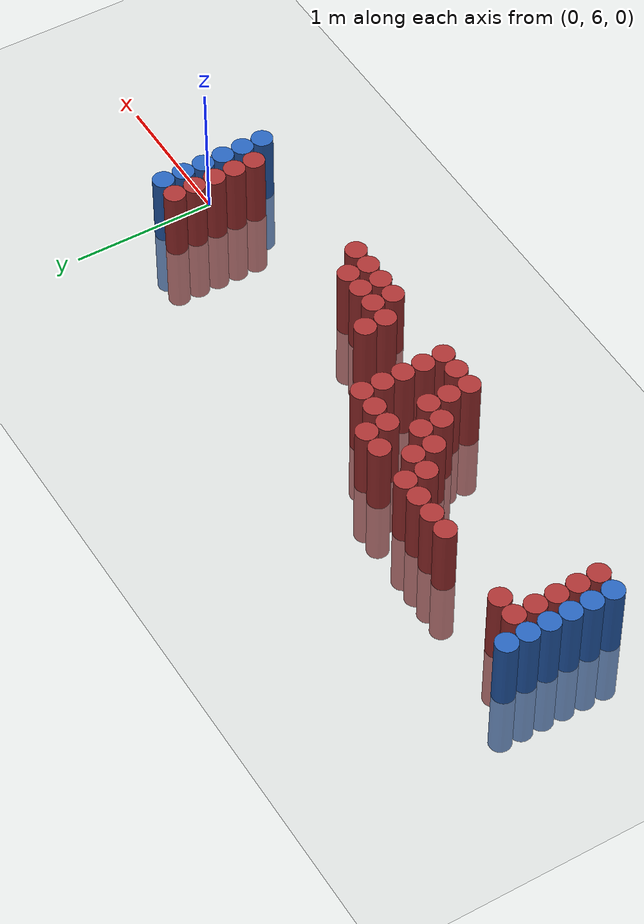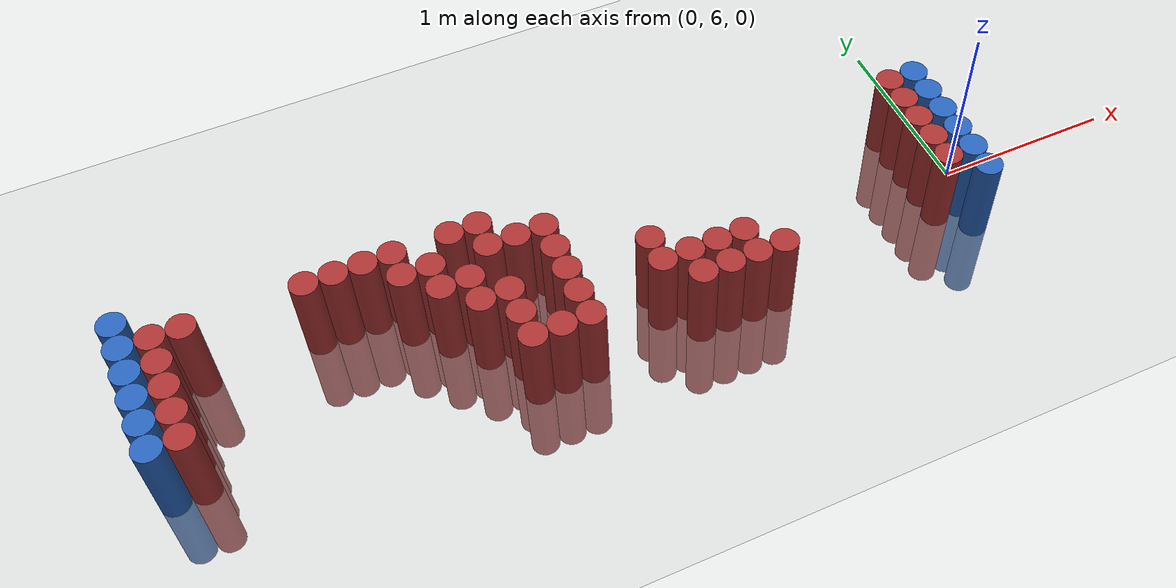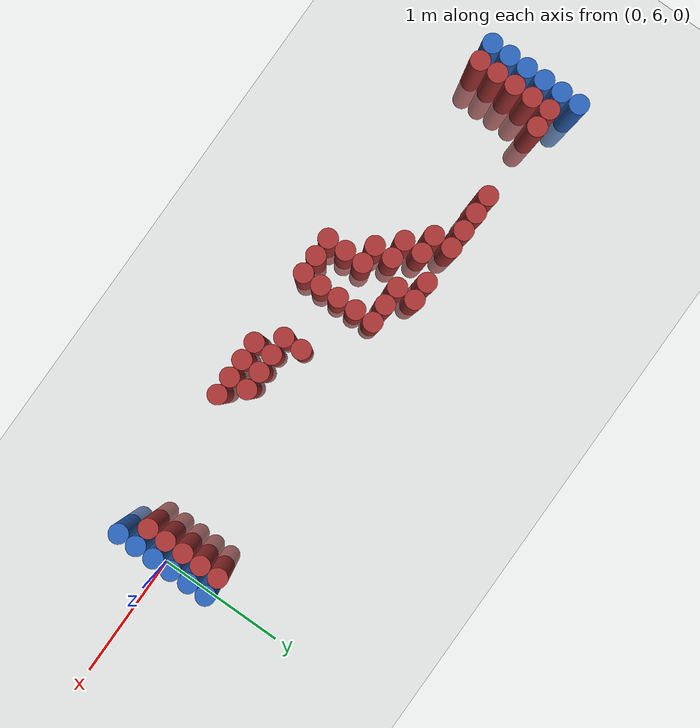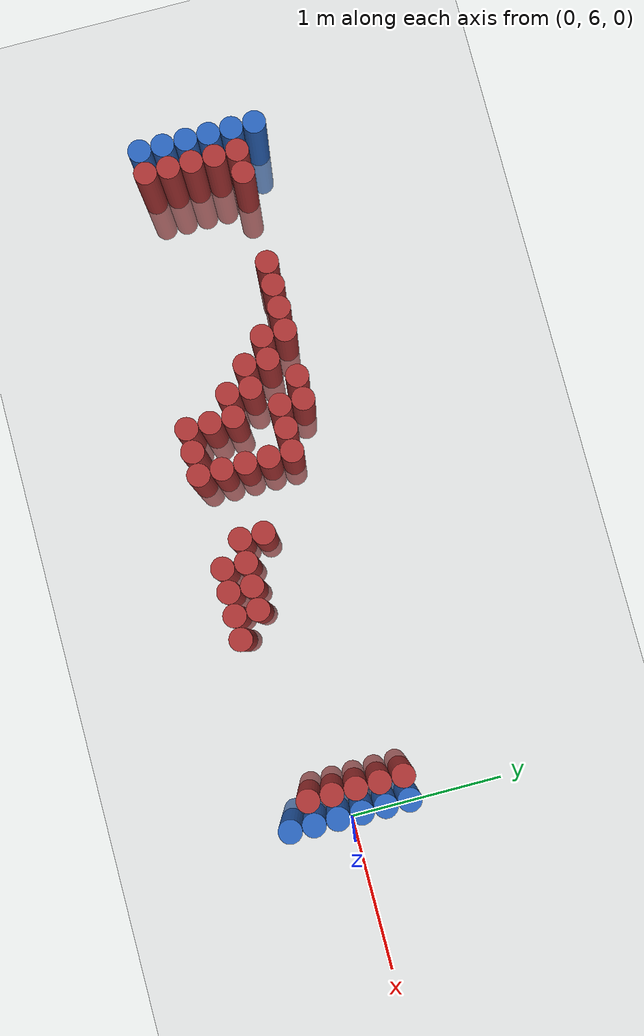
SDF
<sdf version="1.6">
 <world name="default">
  <model name="ground_plane">
   <static>1</static>
   <link name="link">
    <collision name="collision">
     <geometry><plane><normal>0 0 1</normal><size>100 100</size></plane></geometry>
     <surface><friction><ode><mu>100</mu><mu2>50</mu2></ode></friction></surface>
    </collision>
    <visual name="visual">
     <cast_shadows>0</cast_shadows>
     <geometry><plane><normal>0 0 1</normal><size>100 100</size></plane></geometry>
     <material>
      <script><uri>file://media/materials/scripts/gazebo.material</uri><name>Gazebo/Grey</name></script>
     </material>
    </visual>
   </link>
  </model>
  <model name="unit_cylinder_100">
   <static>1</static>
   <pose>-4.425000 5.775000 0.000000 0.000000 0.000000 0.000000</pose>
   <link name="link">
    <inertial>
     <mass>1</mass>
     <inertia><ixx>0.145833</ixx><ixy>0</ixy><ixz>0</ixz><iyy>0.145833</iyy><iyz>0</iyz><izz>0.125</izz></inertia>
    </inertial>
    <collision name="collision">
     <geometry><cylinder><radius>0.075000</radius><length>1</length></cylinder></geometry>
    </collision>
    <visual name="visual">
     <geometry><cylinder><radius>0.075000</radius><length>1</length></cylinder></geometry>
     <material>
      <ambient>0.152000 0.379000 0.720000 1</ambient>
      <diffuse>0.152000 0.379000 0.720000 1</diffuse>
     </material>
     <material>
      <script><name>Gazebo/Grey</name><uri>file://media/materials/scripts/gazebo.material</uri></script>
     </material>
    </visual>
   </link>
  </model>
  <model name="unit_cylinder_101">
   <static>1</static>
   <pose>-4.425000 5.925000 0.000000 0.000000 0.000000 0.000000</pose>
   <link name="link">
    <inertial>
     <mass>1</mass>
     <inertia><ixx>0.145833</ixx><ixy>0</ixy><ixz>0</ixz><iyy>0.145833</iyy><iyz>0</iyz><izz>0.125</izz></inertia>
    </inertial>
    <collision name="collision">
     <geometry><cylinder><radius>0.075000</radius><length>1</length></cylinder></geometry>
    </collision>
    <visual name="visual">
     <geometry><cylinder><radius>0.075000</radius><length>1</length></cylinder></geometry>
     <material>
      <ambient>0.152000 0.379000 0.720000 1</ambient>
      <diffuse>0.152000 0.379000 0.720000 1</diffuse>
     </material>
     <material>
      <script><name>Gazebo/Grey</name><uri>file://media/materials/scripts/gazebo.material</uri></script>
     </material>
    </visual>
   </link>
  </model>
  <model name="unit_cylinder_102">
   <static>1</static>
   <pose>-4.425000 6.075000 0.000000 0.000000 0.000000 0.000000</pose>
   <link name="link">
    <inertial>
     <mass>1</mass>
     <inertia><ixx>0.145833</ixx><ixy>0</ixy><ixz>0</ixz><iyy>0.145833</iyy><iyz>0</iyz><izz>0.125</izz></inertia>
    </inertial>
    <collision name="collision">
     <geometry><cylinder><radius>0.075000</radius><length>1</length></cylinder></geometry>
    </collision>
    <visual name="visual">
     <geometry><cylinder><radius>0.075000</radius><length>1</length></cylinder></geometry>
     <material>
      <ambient>0.152000 0.379000 0.720000 1</ambient>
      <diffuse>0.152000 0.379000 0.720000 1</diffuse>
     </material>
     <material>
      <script><name>Gazebo/Grey</name><uri>file://media/materials/scripts/gazebo.material</uri></script>
     </material>
    </visual>
   </link>
  </model>
  <model name="unit_cylinder_103">
   <static>1</static>
   <pose>-4.425000 6.225000 0.000000 0.000000 0.000000 0.000000</pose>
   <link name="link">
    <inertial>
     <mass>1</mass>
     <inertia><ixx>0.145833</ixx><ixy>0</ixy><ixz>0</ixz><iyy>0.145833</iyy><iyz>0</iyz><izz>0.125</izz></inertia>
    </inertial>
    <collision name="collision">
     <geometry><cylinder><radius>0.075000</radius><length>1</length></cylinder></geometry>
    </collision>
    <visual name="visual">
     <geometry><cylinder><radius>0.075000</radius><length>1</length></cylinder></geometry>
     <material>
      <ambient>0.152000 0.379000 0.720000 1</ambient>
      <diffuse>0.152000 0.379000 0.720000 1</diffuse>
     </material>
     <material>
      <script><name>Gazebo/Grey</name><uri>file://media/materials/scripts/gazebo.material</uri></script>
     </material>
    </visual>
   </link>
  </model>
  <model name="unit_cylinder_104">
   <static>1</static>
   <pose>-4.425000 6.375000 0.000000 0.000000 0.000000 0.000000</pose>
   <link name="link">
    <inertial>
     <mass>1</mass>
     <inertia><ixx>0.145833</ixx><ixy>0</ixy><ixz>0</ixz><iyy>0.145833</iyy><iyz>0</iyz><izz>0.125</izz></inertia>
    </inertial>
    <collision name="collision">
     <geometry><cylinder><radius>0.075000</radius><length>1</length></cylinder></geometry>
    </collision>
    <visual name="visual">
     <geometry><cylinder><radius>0.075000</radius><length>1</length></cylinder></geometry>
     <material>
      <ambient>0.152000 0.379000 0.720000 1</ambient>
      <diffuse>0.152000 0.379000 0.720000 1</diffuse>
     </material>
     <material>
      <script><name>Gazebo/Grey</name><uri>file://media/materials/scripts/gazebo.material</uri></script>
     </material>
    </visual>
   </link>
  </model>
  <model name="unit_cylinder_105">
   <static>1</static>
   <pose>-4.425000 6.525000 0.000000 0.000000 0.000000 0.000000</pose>
   <link name="link">
    <inertial>
     <mass>1</mass>
     <inertia><ixx>0.145833</ixx><ixy>0</ixy><ixz>0</ixz><iyy>0.145833</iyy><iyz>0</iyz><izz>0.125</izz></inertia>
    </inertial>
    <collision name="collision">
     <geometry><cylinder><radius>0.075000</radius><length>1</length></cylinder></geometry>
    </collision>
    <visual name="visual">
     <geometry><cylinder><radius>0.075000</radius><length>1</length></cylinder></geometry>
     <material>
      <ambient>0.152000 0.379000 0.720000 1</ambient>
      <diffuse>0.152000 0.379000 0.720000 1</diffuse>
     </material>
     <material>
      <script><name>Gazebo/Grey</name><uri>file://media/materials/scripts/gazebo.material</uri></script>
     </material>
    </visual>
   </link>
  </model>
  <model name="unit_cylinder_129">
   <static>1</static>
   <pose>-4.275000 5.775000 0.000000 0.000000 0.000000 0.000000</pose>
   <link name="link">
    <inertial>
     <mass>1</mass>
     <inertia><ixx>0.145833</ixx><ixy>0</ixy><ixz>0</ixz><iyy>0.145833</iyy><iyz>0</iyz><izz>0.125</izz></inertia>
    </inertial>
    <collision name="collision">
     <geometry><cylinder><radius>0.075000</radius><length>1</length></cylinder></geometry>
    </collision>
    <visual name="visual">
     <geometry><cylinder><radius>0.075000</radius><length>1</length></cylinder></geometry>
     <material>
      <ambient>0.648000 0.192000 0.192000 1</ambient>
      <diffuse>0.648000 0.192000 0.192000 1</diffuse>
     </material>
     <material>
      <script><name>Gazebo/Grey</name><uri>file://media/materials/scripts/gazebo.material</uri></script>
     </material>
    </visual>
   </link>
  </model>
  <model name="unit_cylinder_130">
   <static>1</static>
   <pose>-4.275000 5.925000 0.000000 0.000000 0.000000 0.000000</pose>
   <link name="link">
    <inertial>
     <mass>1</mass>
     <inertia><ixx>0.145833</ixx><ixy>0</ixy><ixz>0</ixz><iyy>0.145833</iyy><iyz>0</iyz><izz>0.125</izz></inertia>
    </inertial>
    <collision name="collision">
     <geometry><cylinder><radius>0.075000</radius><length>1</length></cylinder></geometry>
    </collision>
    <visual name="visual">
     <geometry><cylinder><radius>0.075000</radius><length>1</length></cylinder></geometry>
     <material>
      <ambient>0.648000 0.192000 0.192000 1</ambient>
      <diffuse>0.648000 0.192000 0.192000 1</diffuse>
     </material>
     <material>
      <script><name>Gazebo/Grey</name><uri>file://media/materials/scripts/gazebo.material</uri></script>
     </material>
    </visual>
   </link>
  </model>
  <model name="unit_cylinder_131">
   <static>1</static>
   <pose>-4.275000 6.075000 0.000000 0.000000 0.000000 0.000000</pose>
   <link name="link">
    <inertial>
     <mass>1</mass>
     <inertia><ixx>0.145833</ixx><ixy>0</ixy><ixz>0</ixz><iyy>0.145833</iyy><iyz>0</iyz><izz>0.125</izz></inertia>
    </inertial>
    <collision name="collision">
     <geometry><cylinder><radius>0.075000</radius><length>1</length></cylinder></geometry>
    </collision>
    <visual name="visual">
     <geometry><cylinder><radius>0.075000</radius><length>1</length></cylinder></geometry>
     <material>
      <ambient>0.648000 0.192000 0.192000 1</ambient>
      <diffuse>0.648000 0.192000 0.192000 1</diffuse>
     </material>
     <material>
      <script><name>Gazebo/Grey</name><uri>file://media/materials/scripts/gazebo.material</uri></script>
     </material>
    </visual>
   </link>
  </model>
  <model name="unit_cylinder_132">
   <static>1</static>
   <pose>-4.275000 6.225000 0.000000 0.000000 0.000000 0.000000</pose>
   <link name="link">
    <inertial>
     <mass>1</mass>
     <inertia><ixx>0.145833</ixx><ixy>0</ixy><ixz>0</ixz><iyy>0.145833</iyy><iyz>0</iyz><izz>0.125</izz></inertia>
    </inertial>
    <collision name="collision">
     <geometry><cylinder><radius>0.075000</radius><length>1</length></cylinder></geometry>
    </collision>
    <visual name="visual">
     <geometry><cylinder><radius>0.075000</radius><length>1</length></cylinder></geometry>
     <material>
      <ambient>0.648000 0.192000 0.192000 1</ambient>
      <diffuse>0.648000 0.192000 0.192000 1</diffuse>
     </material>
     <material>
      <script><name>Gazebo/Grey</name><uri>file://media/materials/scripts/gazebo.material</uri></script>
     </material>
    </visual>
   </link>
  </model>
  <model name="unit_cylinder_133">
   <static>1</static>
   <pose>-4.275000 6.375000 0.000000 0.000000 0.000000 0.000000</pose>
   <link name="link">
    <inertial>
     <mass>1</mass>
     <inertia><ixx>0.145833</ixx><ixy>0</ixy><ixz>0</ixz><iyy>0.145833</iyy><iyz>0</iyz><izz>0.125</izz></inertia>
    </inertial>
    <collision name="collision">
     <geometry><cylinder><radius>0.075000</radius><length>1</length></cylinder></geometry>
    </collision>
    <visual name="visual">
     <geometry><cylinder><radius>0.075000</radius><length>1</length></cylinder></geometry>
     <material>
      <ambient>0.648000 0.192000 0.192000 1</ambient>
      <diffuse>0.648000 0.192000 0.192000 1</diffuse>
     </material>
     <material>
      <script><name>Gazebo/Grey</name><uri>file://media/materials/scripts/gazebo.material</uri></script>
     </material>
    </visual>
   </link>
  </model>
  <model name="unit_cylinder_137">
   <static>1</static>
   <pose>-4.125000 6.375000 0.000000 0.000000 0.000000 0.000000</pose>
   <link name="link">
    <inertial>
     <mass>1</mass>
     <inertia><ixx>0.145833</ixx><ixy>0</ixy><ixz>0</ixz><iyy>0.145833</iyy><iyz>0</iyz><izz>0.125</izz></inertia>
    </inertial>
    <collision name="collision">
     <geometry><cylinder><radius>0.075000</radius><length>1</length></cylinder></geometry>
    </collision>
    <visual name="visual">
     <geometry><cylinder><radius>0.075000</radius><length>1</length></cylinder></geometry>
     <material>
      <ambient>0.648000 0.192000 0.192000 1</ambient>
      <diffuse>0.648000 0.192000 0.192000 1</diffuse>
     </material>
     <material>
      <script><name>Gazebo/Grey</name><uri>file://media/materials/scripts/gazebo.material</uri></script>
     </material>
    </visual>
   </link>
  </model>
  <model name="unit_cylinder_164">
   <static>1</static>
   <pose>-3.525000 6.375000 0.000000 0.000000 0.000000 0.000000</pose>
   <link name="link">
    <inertial>
     <mass>1</mass>
     <inertia><ixx>0.145833</ixx><ixy>0</ixy><ixz>0</ixz><iyy>0.145833</iyy><iyz>0</iyz><izz>0.125</izz></inertia>
    </inertial>
    <collision name="collision">
     <geometry><cylinder><radius>0.075000</radius><length>1</length></cylinder></geometry>
    </collision>
    <visual name="visual">
     <geometry><cylinder><radius>0.075000</radius><length>1</length></cylinder></geometry>
     <material>
      <ambient>0.648000 0.192000 0.192000 1</ambient>
      <diffuse>0.648000 0.192000 0.192000 1</diffuse>
     </material>
     <material>
      <script><name>Gazebo/Grey</name><uri>file://media/materials/scripts/gazebo.material</uri></script>
     </material>
    </visual>
   </link>
  </model>
  <model name="unit_cylinder_169">
   <static>1</static>
   <pose>-3.375000 6.375000 0.000000 0.000000 0.000000 0.000000</pose>
   <link name="link">
    <inertial>
     <mass>1</mass>
     <inertia><ixx>0.145833</ixx><ixy>0</ixy><ixz>0</ixz><iyy>0.145833</iyy><iyz>0</iyz><izz>0.125</izz></inertia>
    </inertial>
    <collision name="collision">
     <geometry><cylinder><radius>0.075000</radius><length>1</length></cylinder></geometry>
    </collision>
    <visual name="visual">
     <geometry><cylinder><radius>0.075000</radius><length>1</length></cylinder></geometry>
     <material>
      <ambient>0.648000 0.192000 0.192000 1</ambient>
      <diffuse>0.648000 0.192000 0.192000 1</diffuse>
     </material>
     <material>
      <script><name>Gazebo/Grey</name><uri>file://media/materials/scripts/gazebo.material</uri></script>
     </material>
    </visual>
   </link>
  </model>
  <model name="unit_cylinder_180">
   <static>1</static>
   <pose>-3.225000 6.375000 0.000000 0.000000 0.000000 0.000000</pose>
   <link name="link">
    <inertial>
     <mass>1</mass>
     <inertia><ixx>0.145833</ixx><ixy>0</ixy><ixz>0</ixz><iyy>0.145833</iyy><iyz>0</iyz><izz>0.125</izz></inertia>
    </inertial>
    <collision name="collision">
     <geometry><cylinder><radius>0.075000</radius><length>1</length></cylinder></geometry>
    </collision>
    <visual name="visual">
     <geometry><cylinder><radius>0.075000</radius><length>1</length></cylinder></geometry>
     <material>
      <ambient>0.648000 0.192000 0.192000 1</ambient>
      <diffuse>0.648000 0.192000 0.192000 1</diffuse>
     </material>
     <material>
      <script><name>Gazebo/Grey</name><uri>file://media/materials/scripts/gazebo.material</uri></script>
     </material>
    </visual>
   </link>
  </model>
  <model name="unit_cylinder_188">
   <static>1</static>
   <pose>-3.075000 6.225000 0.000000 0.000000 0.000000 0.000000</pose>
   <link name="link">
    <inertial>
     <mass>1</mass>
     <inertia><ixx>0.145833</ixx><ixy>0</ixy><ixz>0</ixz><iyy>0.145833</iyy><iyz>0</iyz><izz>0.125</izz></inertia>
    </inertial>
    <collision name="collision">
     <geometry><cylinder><radius>0.075000</radius><length>1</length></cylinder></geometry>
    </collision>
    <visual name="visual">
     <geometry><cylinder><radius>0.075000</radius><length>1</length></cylinder></geometry>
     <material>
      <ambient>0.648000 0.192000 0.192000 1</ambient>
      <diffuse>0.648000 0.192000 0.192000 1</diffuse>
     </material>
     <material>
      <script><name>Gazebo/Grey</name><uri>file://media/materials/scripts/gazebo.material</uri></script>
     </material>
    </visual>
   </link>
  </model>
  <model name="unit_cylinder_189">
   <static>1</static>
   <pose>-3.075000 6.375000 0.000000 0.000000 0.000000 0.000000</pose>
   <link name="link">
    <inertial>
     <mass>1</mass>
     <inertia><ixx>0.145833</ixx><ixy>0</ixy><ixz>0</ixz><iyy>0.145833</iyy><iyz>0</iyz><izz>0.125</izz></inertia>
    </inertial>
    <collision name="collision">
     <geometry><cylinder><radius>0.075000</radius><length>1</length></cylinder></geometry>
    </collision>
    <visual name="visual">
     <geometry><cylinder><radius>0.075000</radius><length>1</length></cylinder></geometry>
     <material>
      <ambient>0.648000 0.192000 0.192000 1</ambient>
      <diffuse>0.648000 0.192000 0.192000 1</diffuse>
     </material>
     <material>
      <script><name>Gazebo/Grey</name><uri>file://media/materials/scripts/gazebo.material</uri></script>
     </material>
    </visual>
   </link>
  </model>
  <model name="unit_cylinder_193">
   <static>1</static>
   <pose>-2.925000 6.075000 0.000000 0.000000 0.000000 0.000000</pose>
   <link name="link">
    <inertial>
     <mass>1</mass>
     <inertia><ixx>0.145833</ixx><ixy>0</ixy><ixz>0</ixz><iyy>0.145833</iyy><iyz>0</iyz><izz>0.125</izz></inertia>
    </inertial>
    <collision name="collision">
     <geometry><cylinder><radius>0.075000</radius><length>1</length></cylinder></geometry>
    </collision>
    <visual name="visual">
     <geometry><cylinder><radius>0.075000</radius><length>1</length></cylinder></geometry>
     <material>
      <ambient>0.648000 0.192000 0.192000 1</ambient>
      <diffuse>0.648000 0.192000 0.192000 1</diffuse>
     </material>
     <material>
      <script><name>Gazebo/Grey</name><uri>file://media/materials/scripts/gazebo.material</uri></script>
     </material>
    </visual>
   </link>
  </model>
  <model name="unit_cylinder_194">
   <static>1</static>
   <pose>-2.925000 6.225000 0.000000 0.000000 0.000000 0.000000</pose>
   <link name="link">
    <inertial>
     <mass>1</mass>
     <inertia><ixx>0.145833</ixx><ixy>0</ixy><ixz>0</ixz><iyy>0.145833</iyy><iyz>0</iyz><izz>0.125</izz></inertia>
    </inertial>
    <collision name="collision">
     <geometry><cylinder><radius>0.075000</radius><length>1</length></cylinder></geometry>
    </collision>
    <visual name="visual">
     <geometry><cylinder><radius>0.075000</radius><length>1</length></cylinder></geometry>
     <material>
      <ambient>0.648000 0.192000 0.192000 1</ambient>
      <diffuse>0.648000 0.192000 0.192000 1</diffuse>
     </material>
     <material>
      <script><name>Gazebo/Grey</name><uri>file://media/materials/scripts/gazebo.material</uri></script>
     </material>
    </visual>
   </link>
  </model>
  <model name="unit_cylinder_198">
   <static>1</static>
   <pose>-2.775000 5.925000 0.000000 0.000000 0.000000 0.000000</pose>
   <link name="link">
    <inertial>
     <mass>1</mass>
     <inertia><ixx>0.145833</ixx><ixy>0</ixy><ixz>0</ixz><iyy>0.145833</iyy><iyz>0</iyz><izz>0.125</izz></inertia>
    </inertial>
    <collision name="collision">
     <geometry><cylinder><radius>0.075000</radius><length>1</length></cylinder></geometry>
    </collision>
    <visual name="visual">
     <geometry><cylinder><radius>0.075000</radius><length>1</length></cylinder></geometry>
     <material>
      <ambient>0.648000 0.192000 0.192000 1</ambient>
      <diffuse>0.648000 0.192000 0.192000 1</diffuse>
     </material>
     <material>
      <script><name>Gazebo/Grey</name><uri>file://media/materials/scripts/gazebo.material</uri></script>
     </material>
    </visual>
   </link>
  </model>
  <model name="unit_cylinder_199">
   <static>1</static>
   <pose>-2.775000 6.075000 0.000000 0.000000 0.000000 0.000000</pose>
   <link name="link">
    <inertial>
     <mass>1</mass>
     <inertia><ixx>0.145833</ixx><ixy>0</ixy><ixz>0</ixz><iyy>0.145833</iyy><iyz>0</iyz><izz>0.125</izz></inertia>
    </inertial>
    <collision name="collision">
     <geometry><cylinder><radius>0.075000</radius><length>1</length></cylinder></geometry>
    </collision>
    <visual name="visual">
     <geometry><cylinder><radius>0.075000</radius><length>1</length></cylinder></geometry>
     <material>
      <ambient>0.648000 0.192000 0.192000 1</ambient>
      <diffuse>0.648000 0.192000 0.192000 1</diffuse>
     </material>
     <material>
      <script><name>Gazebo/Grey</name><uri>file://media/materials/scripts/gazebo.material</uri></script>
     </material>
    </visual>
   </link>
  </model>
  <model name="unit_cylinder_200">
   <static>1</static>
   <pose>-2.775000 6.375000 0.000000 0.000000 0.000000 0.000000</pose>
   <link name="link">
    <inertial>
     <mass>1</mass>
     <inertia><ixx>0.145833</ixx><ixy>0</ixy><ixz>0</ixz><iyy>0.145833</iyy><iyz>0</iyz><izz>0.125</izz></inertia>
    </inertial>
    <collision name="collision">
     <geometry><cylinder><radius>0.075000</radius><length>1</length></cylinder></geometry>
    </collision>
    <visual name="visual">
     <geometry><cylinder><radius>0.075000</radius><length>1</length></cylinder></geometry>
     <material>
      <ambient>0.648000 0.192000 0.192000 1</ambient>
      <diffuse>0.648000 0.192000 0.192000 1</diffuse>
     </material>
     <material>
      <script><name>Gazebo/Grey</name><uri>file://media/materials/scripts/gazebo.material</uri></script>
     </material>
    </visual>
   </link>
  </model>
  <model name="unit_cylinder_207">
   <static>1</static>
   <pose>-2.625000 5.625000 0.000000 0.000000 0.000000 0.000000</pose>
   <link name="link">
    <inertial>
     <mass>1</mass>
     <inertia><ixx>0.145833</ixx><ixy>0</ixy><ixz>0</ixz><iyy>0.145833</iyy><iyz>0</iyz><izz>0.125</izz></inertia>
    </inertial>
    <collision name="collision">
     <geometry><cylinder><radius>0.075000</radius><length>1</length></cylinder></geometry>
    </collision>
    <visual name="visual">
     <geometry><cylinder><radius>0.075000</radius><length>1</length></cylinder></geometry>
     <material>
      <ambient>0.648000 0.192000 0.192000 1</ambient>
      <diffuse>0.648000 0.192000 0.192000 1</diffuse>
     </material>
     <material>
      <script><name>Gazebo/Grey</name><uri>file://media/materials/scripts/gazebo.material</uri></script>
     </material>
    </visual>
   </link>
  </model>
  <model name="unit_cylinder_208">
   <static>1</static>
   <pose>-2.625000 5.775000 0.000000 0.000000 0.000000 0.000000</pose>
   <link name="link">
    <inertial>
     <mass>1</mass>
     <inertia><ixx>0.145833</ixx><ixy>0</ixy><ixz>0</ixz><iyy>0.145833</iyy><iyz>0</iyz><izz>0.125</izz></inertia>
    </inertial>
    <collision name="collision">
     <geometry><cylinder><radius>0.075000</radius><length>1</length></cylinder></geometry>
    </collision>
    <visual name="visual">
     <geometry><cylinder><radius>0.075000</radius><length>1</length></cylinder></geometry>
     <material>
      <ambient>0.648000 0.192000 0.192000 1</ambient>
      <diffuse>0.648000 0.192000 0.192000 1</diffuse>
     </material>
     <material>
      <script><name>Gazebo/Grey</name><uri>file://media/materials/scripts/gazebo.material</uri></script>
     </material>
    </visual>
   </link>
  </model>
  <model name="unit_cylinder_209">
   <static>1</static>
   <pose>-2.625000 5.925000 0.000000 0.000000 0.000000 0.000000</pose>
   <link name="link">
    <inertial>
     <mass>1</mass>
     <inertia><ixx>0.145833</ixx><ixy>0</ixy><ixz>0</ixz><iyy>0.145833</iyy><iyz>0</iyz><izz>0.125</izz></inertia>
    </inertial>
    <collision name="collision">
     <geometry><cylinder><radius>0.075000</radius><length>1</length></cylinder></geometry>
    </collision>
    <visual name="visual">
     <geometry><cylinder><radius>0.075000</radius><length>1</length></cylinder></geometry>
     <material>
      <ambient>0.648000 0.192000 0.192000 1</ambient>
      <diffuse>0.648000 0.192000 0.192000 1</diffuse>
     </material>
     <material>
      <script><name>Gazebo/Grey</name><uri>file://media/materials/scripts/gazebo.material</uri></script>
     </material>
    </visual>
   </link>
  </model>
  <model name="unit_cylinder_210">
   <static>1</static>
   <pose>-2.625000 6.225000 0.000000 0.000000 0.000000 0.000000</pose>
   <link name="link">
    <inertial>
     <mass>1</mass>
     <inertia><ixx>0.145833</ixx><ixy>0</ixy><ixz>0</ixz><iyy>0.145833</iyy><iyz>0</iyz><izz>0.125</izz></inertia>
    </inertial>
    <collision name="collision">
     <geometry><cylinder><radius>0.075000</radius><length>1</length></cylinder></geometry>
    </collision>
    <visual name="visual">
     <geometry><cylinder><radius>0.075000</radius><length>1</length></cylinder></geometry>
     <material>
      <ambient>0.648000 0.192000 0.192000 1</ambient>
      <diffuse>0.648000 0.192000 0.192000 1</diffuse>
     </material>
     <material>
      <script><name>Gazebo/Grey</name><uri>file://media/materials/scripts/gazebo.material</uri></script>
     </material>
    </visual>
   </link>
  </model>
  <model name="unit_cylinder_211">
   <static>1</static>
   <pose>-2.625000 6.375000 0.000000 0.000000 0.000000 0.000000</pose>
   <link name="link">
    <inertial>
     <mass>1</mass>
     <inertia><ixx>0.145833</ixx><ixy>0</ixy><ixz>0</ixz><iyy>0.145833</iyy><iyz>0</iyz><izz>0.125</izz></inertia>
    </inertial>
    <collision name="collision">
     <geometry><cylinder><radius>0.075000</radius><length>1</length></cylinder></geometry>
    </collision>
    <visual name="visual">
     <geometry><cylinder><radius>0.075000</radius><length>1</length></cylinder></geometry>
     <material>
      <ambient>0.648000 0.192000 0.192000 1</ambient>
      <diffuse>0.648000 0.192000 0.192000 1</diffuse>
     </material>
     <material>
      <script><name>Gazebo/Grey</name><uri>file://media/materials/scripts/gazebo.material</uri></script>
     </material>
    </visual>
   </link>
  </model>
  <model name="unit_cylinder_216">
   <static>1</static>
   <pose>-2.475000 5.625000 0.000000 0.000000 0.000000 0.000000</pose>
   <link name="link">
    <inertial>
     <mass>1</mass>
     <inertia><ixx>0.145833</ixx><ixy>0</ixy><ixz>0</ixz><iyy>0.145833</iyy><iyz>0</iyz><izz>0.125</izz></inertia>
    </inertial>
    <collision name="collision">
     <geometry><cylinder><radius>0.075000</radius><length>1</length></cylinder></geometry>
    </collision>
    <visual name="visual">
     <geometry><cylinder><radius>0.075000</radius><length>1</length></cylinder></geometry>
     <material>
      <ambient>0.648000 0.192000 0.192000 1</ambient>
      <diffuse>0.648000 0.192000 0.192000 1</diffuse>
     </material>
     <material>
      <script><name>Gazebo/Grey</name><uri>file://media/materials/scripts/gazebo.material</uri></script>
     </material>
    </visual>
   </link>
  </model>
  <model name="unit_cylinder_217">
   <static>1</static>
   <pose>-2.475000 6.225000 0.000000 0.000000 0.000000 0.000000</pose>
   <link name="link">
    <inertial>
     <mass>1</mass>
     <inertia><ixx>0.145833</ixx><ixy>0</ixy><ixz>0</ixz><iyy>0.145833</iyy><iyz>0</iyz><izz>0.125</izz></inertia>
    </inertial>
    <collision name="collision">
     <geometry><cylinder><radius>0.075000</radius><length>1</length></cylinder></geometry>
    </collision>
    <visual name="visual">
     <geometry><cylinder><radius>0.075000</radius><length>1</length></cylinder></geometry>
     <material>
      <ambient>0.648000 0.192000 0.192000 1</ambient>
      <diffuse>0.648000 0.192000 0.192000 1</diffuse>
     </material>
     <material>
      <script><name>Gazebo/Grey</name><uri>file://media/materials/scripts/gazebo.material</uri></script>
     </material>
    </visual>
   </link>
  </model>
  <model name="unit_cylinder_223">
   <static>1</static>
   <pose>-2.325000 5.625000 0.000000 0.000000 0.000000 0.000000</pose>
   <link name="link">
    <inertial>
     <mass>1</mass>
     <inertia><ixx>0.145833</ixx><ixy>0</ixy><ixz>0</ixz><iyy>0.145833</iyy><iyz>0</iyz><izz>0.125</izz></inertia>
    </inertial>
    <collision name="collision">
     <geometry><cylinder><radius>0.075000</radius><length>1</length></cylinder></geometry>
    </collision>
    <visual name="visual">
     <geometry><cylinder><radius>0.075000</radius><length>1</length></cylinder></geometry>
     <material>
      <ambient>0.648000 0.192000 0.192000 1</ambient>
      <diffuse>0.648000 0.192000 0.192000 1</diffuse>
     </material>
     <material>
      <script><name>Gazebo/Grey</name><uri>file://media/materials/scripts/gazebo.material</uri></script>
     </material>
    </visual>
   </link>
  </model>
  <model name="unit_cylinder_224">
   <static>1</static>
   <pose>-2.325000 5.775000 0.000000 0.000000 0.000000 0.000000</pose>
   <link name="link">
    <inertial>
     <mass>1</mass>
     <inertia><ixx>0.145833</ixx><ixy>0</ixy><ixz>0</ixz><iyy>0.145833</iyy><iyz>0</iyz><izz>0.125</izz></inertia>
    </inertial>
    <collision name="collision">
     <geometry><cylinder><radius>0.075000</radius><length>1</length></cylinder></geometry>
    </collision>
    <visual name="visual">
     <geometry><cylinder><radius>0.075000</radius><length>1</length></cylinder></geometry>
     <material>
      <ambient>0.648000 0.192000 0.192000 1</ambient>
      <diffuse>0.648000 0.192000 0.192000 1</diffuse>
     </material>
     <material>
      <script><name>Gazebo/Grey</name><uri>file://media/materials/scripts/gazebo.material</uri></script>
     </material>
    </visual>
   </link>
  </model>
  <model name="unit_cylinder_225">
   <static>1</static>
   <pose>-2.325000 5.925000 0.000000 0.000000 0.000000 0.000000</pose>
   <link name="link">
    <inertial>
     <mass>1</mass>
     <inertia><ixx>0.145833</ixx><ixy>0</ixy><ixz>0</ixz><iyy>0.145833</iyy><iyz>0</iyz><izz>0.125</izz></inertia>
    </inertial>
    <collision name="collision">
     <geometry><cylinder><radius>0.075000</radius><length>1</length></cylinder></geometry>
    </collision>
    <visual name="visual">
     <geometry><cylinder><radius>0.075000</radius><length>1</length></cylinder></geometry>
     <material>
      <ambient>0.648000 0.192000 0.192000 1</ambient>
      <diffuse>0.648000 0.192000 0.192000 1</diffuse>
     </material>
     <material>
      <script><name>Gazebo/Grey</name><uri>file://media/materials/scripts/gazebo.material</uri></script>
     </material>
    </visual>
   </link>
  </model>
  <model name="unit_cylinder_226">
   <static>1</static>
   <pose>-2.325000 6.075000 0.000000 0.000000 0.000000 0.000000</pose>
   <link name="link">
    <inertial>
     <mass>1</mass>
     <inertia><ixx>0.145833</ixx><ixy>0</ixy><ixz>0</ixz><iyy>0.145833</iyy><iyz>0</iyz><izz>0.125</izz></inertia>
    </inertial>
    <collision name="collision">
     <geometry><cylinder><radius>0.075000</radius><length>1</length></cylinder></geometry>
    </collision>
    <visual name="visual">
     <geometry><cylinder><radius>0.075000</radius><length>1</length></cylinder></geometry>
     <material>
      <ambient>0.648000 0.192000 0.192000 1</ambient>
      <diffuse>0.648000 0.192000 0.192000 1</diffuse>
     </material>
     <material>
      <script><name>Gazebo/Grey</name><uri>file://media/materials/scripts/gazebo.material</uri></script>
     </material>
    </visual>
   </link>
  </model>
  <model name="unit_cylinder_227">
   <static>1</static>
   <pose>-2.325000 6.225000 0.000000 0.000000 0.000000 0.000000</pose>
   <link name="link">
    <inertial>
     <mass>1</mass>
     <inertia><ixx>0.145833</ixx><ixy>0</ixy><ixz>0</ixz><iyy>0.145833</iyy><iyz>0</iyz><izz>0.125</izz></inertia>
    </inertial>
    <collision name="collision">
     <geometry><cylinder><radius>0.075000</radius><length>1</length></cylinder></geometry>
    </collision>
    <visual name="visual">
     <geometry><cylinder><radius>0.075000</radius><length>1</length></cylinder></geometry>
     <material>
      <ambient>0.648000 0.192000 0.192000 1</ambient>
      <diffuse>0.648000 0.192000 0.192000 1</diffuse>
     </material>
     <material>
      <script><name>Gazebo/Grey</name><uri>file://media/materials/scripts/gazebo.material</uri></script>
     </material>
    </visual>
   </link>
  </model>
  <model name="unit_cylinder_237">
   <static>1</static>
   <pose>-1.875000 5.775000 0.000000 0.000000 0.000000 0.000000</pose>
   <link name="link">
    <inertial>
     <mass>1</mass>
     <inertia><ixx>0.145833</ixx><ixy>0</ixy><ixz>0</ixz><iyy>0.145833</iyy><iyz>0</iyz><izz>0.125</izz></inertia>
    </inertial>
    <collision name="collision">
     <geometry><cylinder><radius>0.075000</radius><length>1</length></cylinder></geometry>
    </collision>
    <visual name="visual">
     <geometry><cylinder><radius>0.075000</radius><length>1</length></cylinder></geometry>
     <material>
      <ambient>0.648000 0.192000 0.192000 1</ambient>
      <diffuse>0.648000 0.192000 0.192000 1</diffuse>
     </material>
     <material>
      <script><name>Gazebo/Grey</name><uri>file://media/materials/scripts/gazebo.material</uri></script>
     </material>
    </visual>
   </link>
  </model>
  <model name="unit_cylinder_238">
   <static>1</static>
   <pose>-1.875000 5.925000 0.000000 0.000000 0.000000 0.000000</pose>
   <link name="link">
    <inertial>
     <mass>1</mass>
     <inertia><ixx>0.145833</ixx><ixy>0</ixy><ixz>0</ixz><iyy>0.145833</iyy><iyz>0</iyz><izz>0.125</izz></inertia>
    </inertial>
    <collision name="collision">
     <geometry><cylinder><radius>0.075000</radius><length>1</length></cylinder></geometry>
    </collision>
    <visual name="visual">
     <geometry><cylinder><radius>0.075000</radius><length>1</length></cylinder></geometry>
     <material>
      <ambient>0.648000 0.192000 0.192000 1</ambient>
      <diffuse>0.648000 0.192000 0.192000 1</diffuse>
     </material>
     <material>
      <script><name>Gazebo/Grey</name><uri>file://media/materials/scripts/gazebo.material</uri></script>
     </material>
    </visual>
   </link>
  </model>
  <model name="unit_cylinder_240">
   <static>1</static>
   <pose>-1.725000 5.625000 0.000000 0.000000 0.000000 0.000000</pose>
   <link name="link">
    <inertial>
     <mass>1</mass>
     <inertia><ixx>0.145833</ixx><ixy>0</ixy><ixz>0</ixz><iyy>0.145833</iyy><iyz>0</iyz><izz>0.125</izz></inertia>
    </inertial>
    <collision name="collision">
     <geometry><cylinder><radius>0.075000</radius><length>1</length></cylinder></geometry>
    </collision>
    <visual name="visual">
     <geometry><cylinder><radius>0.075000</radius><length>1</length></cylinder></geometry>
     <material>
      <ambient>0.648000 0.192000 0.192000 1</ambient>
      <diffuse>0.648000 0.192000 0.192000 1</diffuse>
     </material>
     <material>
      <script><name>Gazebo/Grey</name><uri>file://media/materials/scripts/gazebo.material</uri></script>
     </material>
    </visual>
   </link>
  </model>
  <model name="unit_cylinder_241">
   <static>1</static>
   <pose>-1.725000 5.775000 0.000000 0.000000 0.000000 0.000000</pose>
   <link name="link">
    <inertial>
     <mass>1</mass>
     <inertia><ixx>0.145833</ixx><ixy>0</ixy><ixz>0</ixz><iyy>0.145833</iyy><iyz>0</iyz><izz>0.125</izz></inertia>
    </inertial>
    <collision name="collision">
     <geometry><cylinder><radius>0.075000</radius><length>1</length></cylinder></geometry>
    </collision>
    <visual name="visual">
     <geometry><cylinder><radius>0.075000</radius><length>1</length></cylinder></geometry>
     <material>
      <ambient>0.648000 0.192000 0.192000 1</ambient>
      <diffuse>0.648000 0.192000 0.192000 1</diffuse>
     </material>
     <material>
      <script><name>Gazebo/Grey</name><uri>file://media/materials/scripts/gazebo.material</uri></script>
     </material>
    </visual>
   </link>
  </model>
  <model name="unit_cylinder_246">
   <static>1</static>
   <pose>-1.575000 5.625000 0.000000 0.000000 0.000000 0.000000</pose>
   <link name="link">
    <inertial>
     <mass>1</mass>
     <inertia><ixx>0.145833</ixx><ixy>0</ixy><ixz>0</ixz><iyy>0.145833</iyy><iyz>0</iyz><izz>0.125</izz></inertia>
    </inertial>
    <collision name="collision">
     <geometry><cylinder><radius>0.075000</radius><length>1</length></cylinder></geometry>
    </collision>
    <visual name="visual">
     <geometry><cylinder><radius>0.075000</radius><length>1</length></cylinder></geometry>
     <material>
      <ambient>0.648000 0.192000 0.192000 1</ambient>
      <diffuse>0.648000 0.192000 0.192000 1</diffuse>
     </material>
     <material>
      <script><name>Gazebo/Grey</name><uri>file://media/materials/scripts/gazebo.material</uri></script>
     </material>
    </visual>
   </link>
  </model>
  <model name="unit_cylinder_247">
   <static>1</static>
   <pose>-1.575000 5.775000 0.000000 0.000000 0.000000 0.000000</pose>
   <link name="link">
    <inertial>
     <mass>1</mass>
     <inertia><ixx>0.145833</ixx><ixy>0</ixy><ixz>0</ixz><iyy>0.145833</iyy><iyz>0</iyz><izz>0.125</izz></inertia>
    </inertial>
    <collision name="collision">
     <geometry><cylinder><radius>0.075000</radius><length>1</length></cylinder></geometry>
    </collision>
    <visual name="visual">
     <geometry><cylinder><radius>0.075000</radius><length>1</length></cylinder></geometry>
     <material>
      <ambient>0.648000 0.192000 0.192000 1</ambient>
      <diffuse>0.648000 0.192000 0.192000 1</diffuse>
     </material>
     <material>
      <script><name>Gazebo/Grey</name><uri>file://media/materials/scripts/gazebo.material</uri></script>
     </material>
    </visual>
   </link>
  </model>
  <model name="unit_cylinder_252">
   <static>1</static>
   <pose>-1.425000 5.625000 0.000000 0.000000 0.000000 0.000000</pose>
   <link name="link">
    <inertial>
     <mass>1</mass>
     <inertia><ixx>0.145833</ixx><ixy>0</ixy><ixz>0</ixz><iyy>0.145833</iyy><iyz>0</iyz><izz>0.125</izz></inertia>
    </inertial>
    <collision name="collision">
     <geometry><cylinder><radius>0.075000</radius><length>1</length></cylinder></geometry>
    </collision>
    <visual name="visual">
     <geometry><cylinder><radius>0.075000</radius><length>1</length></cylinder></geometry>
     <material>
      <ambient>0.648000 0.192000 0.192000 1</ambient>
      <diffuse>0.648000 0.192000 0.192000 1</diffuse>
     </material>
     <material>
      <script><name>Gazebo/Grey</name><uri>file://media/materials/scripts/gazebo.material</uri></script>
     </material>
    </visual>
   </link>
  </model>
  <model name="unit_cylinder_253">
   <static>1</static>
   <pose>-1.425000 5.775000 0.000000 0.000000 0.000000 0.000000</pose>
   <link name="link">
    <inertial>
     <mass>1</mass>
     <inertia><ixx>0.145833</ixx><ixy>0</ixy><ixz>0</ixz><iyy>0.145833</iyy><iyz>0</iyz><izz>0.125</izz></inertia>
    </inertial>
    <collision name="collision">
     <geometry><cylinder><radius>0.075000</radius><length>1</length></cylinder></geometry>
    </collision>
    <visual name="visual">
     <geometry><cylinder><radius>0.075000</radius><length>1</length></cylinder></geometry>
     <material>
      <ambient>0.648000 0.192000 0.192000 1</ambient>
      <diffuse>0.648000 0.192000 0.192000 1</diffuse>
     </material>
     <material>
      <script><name>Gazebo/Grey</name><uri>file://media/materials/scripts/gazebo.material</uri></script>
     </material>
    </visual>
   </link>
  </model>
  <model name="unit_cylinder_257">
   <static>1</static>
   <pose>-1.275000 5.625000 0.000000 0.000000 0.000000 0.000000</pose>
   <link name="link">
    <inertial>
     <mass>1</mass>
     <inertia><ixx>0.145833</ixx><ixy>0</ixy><ixz>0</ixz><iyy>0.145833</iyy><iyz>0</iyz><izz>0.125</izz></inertia>
    </inertial>
    <collision name="collision">
     <geometry><cylinder><radius>0.075000</radius><length>1</length></cylinder></geometry>
    </collision>
    <visual name="visual">
     <geometry><cylinder><radius>0.075000</radius><length>1</length></cylinder></geometry>
     <material>
      <ambient>0.648000 0.192000 0.192000 1</ambient>
      <diffuse>0.648000 0.192000 0.192000 1</diffuse>
     </material>
     <material>
      <script><name>Gazebo/Grey</name><uri>file://media/materials/scripts/gazebo.material</uri></script>
     </material>
    </visual>
   </link>
  </model>
  <model name="unit_cylinder_276">
   <static>1</static>
   <pose>-0.225000 5.775000 0.000000 0.000000 0.000000 0.000000</pose>
   <link name="link">
    <inertial>
     <mass>1</mass>
     <inertia><ixx>0.145833</ixx><ixy>0</ixy><ixz>0</ixz><iyy>0.145833</iyy><iyz>0</iyz><izz>0.125</izz></inertia>
    </inertial>
    <collision name="collision">
     <geometry><cylinder><radius>0.075000</radius><length>1</length></cylinder></geometry>
    </collision>
    <visual name="visual">
     <geometry><cylinder><radius>0.075000</radius><length>1</length></cylinder></geometry>
     <material>
      <ambient>0.648000 0.192000 0.192000 1</ambient>
      <diffuse>0.648000 0.192000 0.192000 1</diffuse>
     </material>
     <material>
      <script><name>Gazebo/Grey</name><uri>file://media/materials/scripts/gazebo.material</uri></script>
     </material>
    </visual>
   </link>
  </model>
  <model name="unit_cylinder_277">
   <static>1</static>
   <pose>-0.225000 5.925000 0.000000 0.000000 0.000000 0.000000</pose>
   <link name="link">
    <inertial>
     <mass>1</mass>
     <inertia><ixx>0.145833</ixx><ixy>0</ixy><ixz>0</ixz><iyy>0.145833</iyy><iyz>0</iyz><izz>0.125</izz></inertia>
    </inertial>
    <collision name="collision">
     <geometry><cylinder><radius>0.075000</radius><length>1</length></cylinder></geometry>
    </collision>
    <visual name="visual">
     <geometry><cylinder><radius>0.075000</radius><length>1</length></cylinder></geometry>
     <material>
      <ambient>0.648000 0.192000 0.192000 1</ambient>
      <diffuse>0.648000 0.192000 0.192000 1</diffuse>
     </material>
     <material>
      <script><name>Gazebo/Grey</name><uri>file://media/materials/scripts/gazebo.material</uri></script>
     </material>
    </visual>
   </link>
  </model>
  <model name="unit_cylinder_278">
   <static>1</static>
   <pose>-0.225000 6.075000 0.000000 0.000000 0.000000 0.000000</pose>
   <link name="link">
    <inertial>
     <mass>1</mass>
     <inertia><ixx>0.145833</ixx><ixy>0</ixy><ixz>0</ixz><iyy>0.145833</iyy><iyz>0</iyz><izz>0.125</izz></inertia>
    </inertial>
    <collision name="collision">
     <geometry><cylinder><radius>0.075000</radius><length>1</length></cylinder></geometry>
    </collision>
    <visual name="visual">
     <geometry><cylinder><radius>0.075000</radius><length>1</length></cylinder></geometry>
     <material>
      <ambient>0.648000 0.192000 0.192000 1</ambient>
      <diffuse>0.648000 0.192000 0.192000 1</diffuse>
     </material>
     <material>
      <script><name>Gazebo/Grey</name><uri>file://media/materials/scripts/gazebo.material</uri></script>
     </material>
    </visual>
   </link>
  </model>
  <model name="unit_cylinder_279">
   <static>1</static>
   <pose>-0.225000 6.225000 0.000000 0.000000 0.000000 0.000000</pose>
   <link name="link">
    <inertial>
     <mass>1</mass>
     <inertia><ixx>0.145833</ixx><ixy>0</ixy><ixz>0</ixz><iyy>0.145833</iyy><iyz>0</iyz><izz>0.125</izz></inertia>
    </inertial>
    <collision name="collision">
     <geometry><cylinder><radius>0.075000</radius><length>1</length></cylinder></geometry>
    </collision>
    <visual name="visual">
     <geometry><cylinder><radius>0.075000</radius><length>1</length></cylinder></geometry>
     <material>
      <ambient>0.648000 0.192000 0.192000 1</ambient>
      <diffuse>0.648000 0.192000 0.192000 1</diffuse>
     </material>
     <material>
      <script><name>Gazebo/Grey</name><uri>file://media/materials/scripts/gazebo.material</uri></script>
     </material>
    </visual>
   </link>
  </model>
  <model name="unit_cylinder_280">
   <static>1</static>
   <pose>-0.225000 6.375000 0.000000 0.000000 0.000000 0.000000</pose>
   <link name="link">
    <inertial>
     <mass>1</mass>
     <inertia><ixx>0.145833</ixx><ixy>0</ixy><ixz>0</ixz><iyy>0.145833</iyy><iyz>0</iyz><izz>0.125</izz></inertia>
    </inertial>
    <collision name="collision">
     <geometry><cylinder><radius>0.075000</radius><length>1</length></cylinder></geometry>
    </collision>
    <visual name="visual">
     <geometry><cylinder><radius>0.075000</radius><length>1</length></cylinder></geometry>
     <material>
      <ambient>0.648000 0.192000 0.192000 1</ambient>
      <diffuse>0.648000 0.192000 0.192000 1</diffuse>
     </material>
     <material>
      <script><name>Gazebo/Grey</name><uri>file://media/materials/scripts/gazebo.material</uri></script>
     </material>
    </visual>
   </link>
  </model>
  <model name="unit_cylinder_297">
   <static>1</static>
   <pose>-0.075000 5.625000 0.000000 0.000000 0.000000 0.000000</pose>
   <link name="link">
    <inertial>
     <mass>1</mass>
     <inertia><ixx>0.145833</ixx><ixy>0</ixy><ixz>0</ixz><iyy>0.145833</iyy><iyz>0</iyz><izz>0.125</izz></inertia>
    </inertial>
    <collision name="collision">
     <geometry><cylinder><radius>0.075000</radius><length>1</length></cylinder></geometry>
    </collision>
    <visual name="visual">
     <geometry><cylinder><radius>0.075000</radius><length>1</length></cylinder></geometry>
     <material>
      <ambient>0.152000 0.379000 0.720000 1</ambient>
      <diffuse>0.152000 0.379000 0.720000 1</diffuse>
     </material>
     <material>
      <script><name>Gazebo/Grey</name><uri>file://media/materials/scripts/gazebo.material</uri></script>
     </material>
    </visual>
   </link>
  </model>
  <model name="unit_cylinder_298">
   <static>1</static>
   <pose>-0.075000 5.775000 0.000000 0.000000 0.000000 0.000000</pose>
   <link name="link">
    <inertial>
     <mass>1</mass>
     <inertia><ixx>0.145833</ixx><ixy>0</ixy><ixz>0</ixz><iyy>0.145833</iyy><iyz>0</iyz><izz>0.125</izz></inertia>
    </inertial>
    <collision name="collision">
     <geometry><cylinder><radius>0.075000</radius><length>1</length></cylinder></geometry>
    </collision>
    <visual name="visual">
     <geometry><cylinder><radius>0.075000</radius><length>1</length></cylinder></geometry>
     <material>
      <ambient>0.152000 0.379000 0.720000 1</ambient>
      <diffuse>0.152000 0.379000 0.720000 1</diffuse>
     </material>
     <material>
      <script><name>Gazebo/Grey</name><uri>file://media/materials/scripts/gazebo.material</uri></script>
     </material>
    </visual>
   </link>
  </model>
  <model name="unit_cylinder_299">
   <static>1</static>
   <pose>-0.075000 5.925000 0.000000 0.000000 0.000000 0.000000</pose>
   <link name="link">
    <inertial>
     <mass>1</mass>
     <inertia><ixx>0.145833</ixx><ixy>0</ixy><ixz>0</ixz><iyy>0.145833</iyy><iyz>0</iyz><izz>0.125</izz></inertia>
    </inertial>
    <collision name="collision">
     <geometry><cylinder><radius>0.075000</radius><length>1</length></cylinder></geometry>
    </collision>
    <visual name="visual">
     <geometry><cylinder><radius>0.075000</radius><length>1</length></cylinder></geometry>
     <material>
      <ambient>0.152000 0.379000 0.720000 1</ambient>
      <diffuse>0.152000 0.379000 0.720000 1</diffuse>
     </material>
     <material>
      <script><name>Gazebo/Grey</name><uri>file://media/materials/scripts/gazebo.material</uri></script>
     </material>
    </visual>
   </link>
  </model>
  <model name="unit_cylinder_300">
   <static>1</static>
   <pose>-0.075000 6.075000 0.000000 0.000000 0.000000 0.000000</pose>
   <link name="link">
    <inertial>
     <mass>1</mass>
     <inertia><ixx>0.145833</ixx><ixy>0</ixy><ixz>0</ixz><iyy>0.145833</iyy><iyz>0</iyz><izz>0.125</izz></inertia>
    </inertial>
    <collision name="collision">
     <geometry><cylinder><radius>0.075000</radius><length>1</length></cylinder></geometry>
    </collision>
    <visual name="visual">
     <geometry><cylinder><radius>0.075000</radius><length>1</length></cylinder></geometry>
     <material>
      <ambient>0.152000 0.379000 0.720000 1</ambient>
      <diffuse>0.152000 0.379000 0.720000 1</diffuse>
     </material>
     <material>
      <script><name>Gazebo/Grey</name><uri>file://media/materials/scripts/gazebo.material</uri></script>
     </material>
    </visual>
   </link>
  </model>
  <model name="unit_cylinder_301">
   <static>1</static>
   <pose>-0.075000 6.225000 0.000000 0.000000 0.000000 0.000000</pose>
   <link name="link">
    <inertial>
     <mass>1</mass>
     <inertia><ixx>0.145833</ixx><ixy>0</ixy><ixz>0</ixz><iyy>0.145833</iyy><iyz>0</iyz><izz>0.125</izz></inertia>
    </inertial>
    <collision name="collision">
     <geometry><cylinder><radius>0.075000</radius><length>1</length></cylinder></geometry>
    </collision>
    <visual name="visual">
     <geometry><cylinder><radius>0.075000</radius><length>1</length></cylinder></geometry>
     <material>
      <ambient>0.152000 0.379000 0.720000 1</ambient>
      <diffuse>0.152000 0.379000 0.720000 1</diffuse>
     </material>
     <material>
      <script><name>Gazebo/Grey</name><uri>file://media/materials/scripts/gazebo.material</uri></script>
     </material>
    </visual>
   </link>
  </model>
  <model name="unit_cylinder_302">
   <static>1</static>
   <pose>-0.075000 6.375000 0.000000 0.000000 0.000000 0.000000</pose>
   <link name="link">
    <inertial>
     <mass>1</mass>
     <inertia><ixx>0.145833</ixx><ixy>0</ixy><ixz>0</ixz><iyy>0.145833</iyy><iyz>0</iyz><izz>0.125</izz></inertia>
    </inertial>
    <collision name="collision">
     <geometry><cylinder><radius>0.075000</radius><length>1</length></cylinder></geometry>
    </collision>
    <visual name="visual">
     <geometry><cylinder><radius>0.075000</radius><length>1</length></cylinder></geometry>
     <material>
      <ambient>0.152000 0.379000 0.720000 1</ambient>
      <diffuse>0.152000 0.379000 0.720000 1</diffuse>
     </material>
     <material>
      <script><name>Gazebo/Grey</name><uri>file://media/materials/scripts/gazebo.material</uri></script>
     </material>
    </visual>
   </link>
  </model>
 </world>
</sdf>
